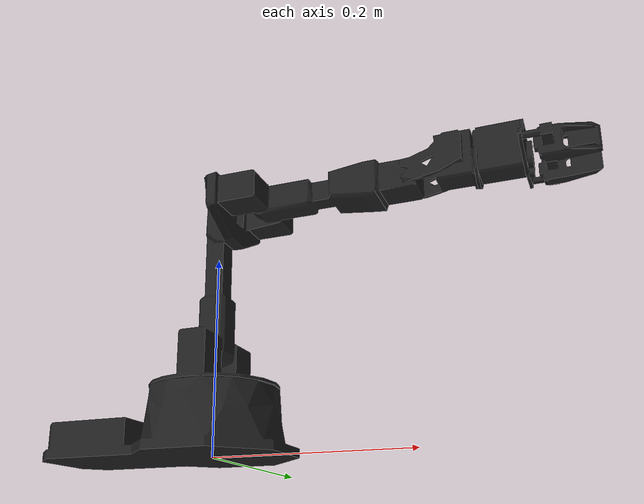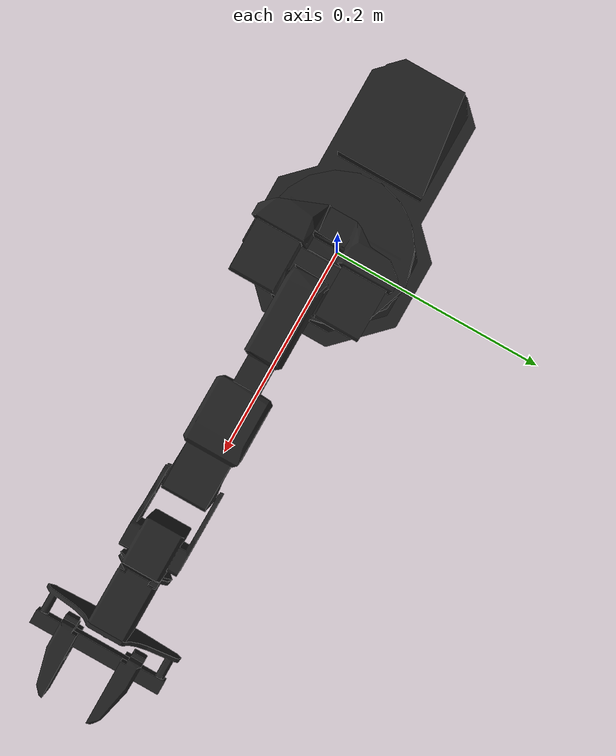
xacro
<?xml version="1.0"?>
<robot name="px150" xmlns:xacro="http://ros.org/wiki/xacro">

  <xacro:arg name="robot_name" default = "px150"/>
  <xacro:arg name="base_link_frame" default="base_link"/>
  <xacro:arg name="show_ar_tag" default="false"/>
  <xacro:arg name="show_gripper_bar" default="true"/>
  <xacro:arg name="show_gripper_fingers" default="true"/>
  <xacro:arg name="use_world_frame" default="false"/>
  <xacro:arg name="external_urdf_loc" default=""/>
  <xacro:arg name="load_gazebo_configs" default="false"/>

  <xacro:property name="urdf_loc" value="$(arg external_urdf_loc)"/>
  <xacro:property name="pi_offset" value="0.00001"/>

  <xacro:if value="$(arg load_gazebo_configs)">
    <xacro:include filename="$(find interbotix_xsarm_gazebo)/config/interbotix_texture.gazebo"/>
  </xacro:if>

  <material name="interbotix_black">
    <texture filename="package://meshes/interbotix_black.png"/>
  </material>

  <xacro:if value="$(arg use_world_frame)">
    <link name="world"/>
    <joint name="fixed" type="fixed">
      <parent link="world"/>
      <child link="$(arg robot_name)/$(arg base_link_frame)"/>
    </joint>
  </xacro:if>

  <link name="$(arg robot_name)/$(arg base_link_frame)">
    <visual>
      <origin rpy="0 0 ${-pi/2}" xyz="0 0 0"/>
      <geometry>
        <mesh filename="package://meshes/px150_meshes/px150_1_base_coll.stl" scale="0.001 0.001 0.001"/>
      </geometry>
      <material name="interbotix_black"/>
    </visual>
    <collision>
      <origin rpy="0 0 ${-pi/2}" xyz="0 0 0"/>
      <geometry>
        <mesh filename="package://meshes/px150_meshes/px150_1_base_coll.stl" scale="0.001 0.001 0.001"/>
      </geometry>
    </collision>
    <inertial>
      <origin rpy="0 0 ${pi/2}" xyz="-0.0354561000 -0.0033567000 0.0253423000"/>
      <mass value="0.766173" />
      <inertia ixx="0.0033550000" iyy="0.0013570000" izz="0.0041120000" ixy="-0.0001248000" ixz="0.0000110400" iyz="0.0002101000" />
    </inertial>
  </link>

  <joint name="waist" type="revolute">
    <axis xyz="0 0 1"/>
    <limit effort="8" lower="${-pi + pi_offset}" upper="${pi - pi_offset}" velocity="${pi}"/>
    <origin rpy="0 0 0" xyz="0 0 0.06566"/>
    <parent link="$(arg robot_name)/$(arg base_link_frame)"/>
    <child link="$(arg robot_name)/shoulder_link"/>
    <dynamics friction="0.1"/>
  </joint>

  <transmission name="trans_waist">
    <type>transmission_interface/SimpleTransmission</type>
    <joint name="waist">
      <hardwareInterface>hardware_interface/EffortJointInterface</hardwareInterface>
    </joint>
    <actuator name="waist_motor">
      <mechanicalReduction>1</mechanicalReduction>
    </actuator>
  </transmission>

  <link name="$(arg robot_name)/shoulder_link">
    <visual>
      <origin rpy="0 0 ${-pi/2}" xyz="0 0 0.0015"/>
      <geometry>
        <mesh filename="package://meshes/px150_meshes/px150_2_shoulder_coll.stl" scale="0.001 0.001 0.001"/>
      </geometry>
      <material name="interbotix_black"/>
    </visual>
    <collision>
      <origin rpy="0 0 ${-pi/2}" xyz="0 0 0.0015"/>
      <geometry>
        <mesh filename="package://meshes/px150_meshes/px150_2_shoulder_coll.stl" scale="0.001 0.001 0.001"/>
      </geometry>
    </collision>
    <inertial>
      <origin rpy="0 0 ${pi/2}" xyz="-0.0001000750 0.0000203624 0.0104104000"/>
      <mass value="0.287601" />
      <inertia ixx="0.0002390000" iyy="0.0003634000" izz="0.0004126000" ixy="0.0000000010" ixz="0.0000000348" iyz="0.0000003613" />
    </inertial>
  </link>

  <joint name="shoulder" type="revolute">
    <axis xyz="0 1 0"/>
    <limit effort="18" lower="${radians(-111)}" upper="${radians(111)}" velocity="${pi}"/>
    <origin rpy="0 0 0" xyz="0 0 0.03891"/>
    <parent link="$(arg robot_name)/shoulder_link"/>
    <child link="$(arg robot_name)/upper_arm_link"/>
    <dynamics friction="0.1"/>
  </joint>

  <transmission name="trans_shoulder">
    <type>transmission_interface/SimpleTransmission</type>
    <joint name="shoulder">
      <hardwareInterface>hardware_interface/EffortJointInterface</hardwareInterface>
    </joint>
    <actuator name="shoulder_motor">
      <mechanicalReduction>1</mechanicalReduction>
    </actuator>
  </transmission>

  <link name="$(arg robot_name)/upper_arm_link">
    <visual>
      <origin rpy="0 0 ${pi/2}" xyz="0 0 0"/>
      <geometry>
        <mesh filename="package://meshes/px150_meshes/px150_3_upper_arm_coll.stl" scale="0.001 0.001 0.001"/>
      </geometry>
      <material name="interbotix_black"/>
    </visual>
    <collision>
      <origin rpy="0 0 ${pi/2}" xyz="0 0 0"/>
      <geometry>
        <mesh filename="package://meshes/px150_meshes/px150_3_upper_arm_coll.stl" scale="0.001 0.001 0.001"/>
      </geometry>
    </collision>
    <inertial>
      <origin rpy="0 0 ${pi/2}" xyz="0.0166098000 0.0000000279 0.1157350000"/>
      <mass value="0.338081" />
      <inertia ixx="0.0010210000" iyy="0.0011320000" izz="0.0003525000" ixy="-0.0000000001" ixz="0.0000000000" iyz="0.0001839000" />
    </inertial>
  </link>

  <joint name="elbow" type="revolute">
    <axis xyz="0 1 0"/>
    <limit effort="13" lower="${radians(-120)}" upper="${radians(95)}" velocity="${pi}"/>
    <origin rpy="0 0 0" xyz="0.05 0 0.15"/>
    <parent link="$(arg robot_name)/upper_arm_link"/>
    <child link="$(arg robot_name)/forearm_link"/>
    <dynamics friction="0.1"/>
  </joint>

  <transmission name="trans_elbow">
    <type>transmission_interface/SimpleTransmission</type>
    <joint name="elbow">
      <hardwareInterface>hardware_interface/EffortJointInterface</hardwareInterface>
    </joint>
    <actuator name="elbow_motor">
      <mechanicalReduction>1</mechanicalReduction>
    </actuator>
  </transmission>

  <link name="$(arg robot_name)/forearm_link">
    <visual>
      <origin rpy="0 0 ${pi/2}" xyz="0 0 0"/>
      <geometry>
        <mesh filename="package://meshes/px150_meshes/px150_4_forearm_coll.stl" scale="0.001 0.001 0.001"/>
      </geometry>
      <material name="interbotix_black"/>
    </visual>
    <collision>
      <origin rpy="0 0 ${pi/2}" xyz="0 0 0"/>
      <geometry>
        <mesh filename="package://meshes/px150_meshes/px150_4_forearm_coll.stl" scale="0.001 0.001 0.001"/>
      </geometry>
    </collision>
    <inertial>
      <origin rpy="0 0 ${pi/2}" xyz="0.0848470000 -0.0001072261 0.0000000000"/>
      <mass value="0.226542" />
      <inertia ixx="0.0005125000" iyy="0.0000498800" izz="0.0005207000" ixy="-0.0000013403" ixz="0.0000000000" iyz="0.0000000000" />
    </inertial>
  </link>

  <joint name="wrist_angle" type="revolute">
    <axis xyz="0 1 0"/>
    <limit effort="5" lower="${radians(-100)}" upper="${radians(123)}" velocity="${pi}"/>
    <origin rpy="0 0 0" xyz="0.15 0 0"/>
    <parent link="$(arg robot_name)/forearm_link"/>
    <child link="$(arg robot_name)/wrist_link"/>
    <dynamics friction="0.1"/>
  </joint>

  <transmission name="trans_wrist_angle">
    <type>transmission_interface/SimpleTransmission</type>
    <joint name="wrist_angle">
      <hardwareInterface>hardware_interface/EffortJointInterface</hardwareInterface>
    </joint>
    <actuator name="wrist_angle_motor">
      <mechanicalReduction>1</mechanicalReduction>
    </actuator>
  </transmission>

  <link name="$(arg robot_name)/wrist_link">
    <visual>
      <origin rpy="0 0 ${pi/2}" xyz="0 0 0"/>
      <geometry>
        <mesh filename="package://meshes/px150_meshes/px150_5_wrist_coll.stl" scale="0.001 0.001 0.001"/>
      </geometry>
      <material name="interbotix_black"/>
    </visual>
    <collision>
      <origin rpy="0 0 ${pi/2}" xyz="0 0 0"/>
      <geometry>
        <mesh filename="package://meshes/px150_meshes/px150_5_wrist_coll.stl" scale="0.001 0.001 0.001"/>
      </geometry>
    </collision>
    <inertial>
      <origin rpy="0 0 ${pi/2}" xyz="0.0423600000 -0.0000104110 0.0105770000"/>
      <mass value="0.084957" />
      <inertia ixx="0.0000308200" iyy="0.0000282200" izz="0.0000315200" ixy="0.0000000191" ixz="0.0000000023" iyz="0.0000025481" />
    </inertial>
  </link>

  <joint name="wrist_rotate" type="revolute">
    <axis xyz="1 0 0"/>
    <limit effort="1" lower="${-pi + pi_offset}" upper="${pi - pi_offset}" velocity="${pi}"/>
    <origin rpy="0 0 0" xyz="0.065 0 0"/>
    <parent link="$(arg robot_name)/wrist_link"/>
    <child link="$(arg robot_name)/gripper_link"/>
    <dynamics friction="0.1"/>
  </joint>

  <transmission name="trans_wrist_rotate">
    <type>transmission_interface/SimpleTransmission</type>
    <joint name="wrist_rotate">
      <hardwareInterface>hardware_interface/EffortJointInterface</hardwareInterface>
    </joint>
    <actuator name="wrist_rotate_motor">
      <mechanicalReduction>1</mechanicalReduction>
    </actuator>
  </transmission>

  <link name="$(arg robot_name)/gripper_link">
    <visual>
      <origin rpy="0 0 ${pi/2}" xyz="-0.02 0 0"/>
      <geometry>
        <mesh filename="package://meshes/px150_meshes/px150_6_gripper_coll.stl" scale="0.001 0.001 0.001"/>
      </geometry>
      <material name="interbotix_black"/>
    </visual>
    <collision>
      <origin rpy="0 0 ${pi/2}" xyz="-0.02 0 0"/>
      <geometry>
        <mesh filename="package://meshes/px150_meshes/px150_6_gripper_coll.stl" scale="0.001 0.001 0.001"/>
      </geometry>
    </collision>
    <inertial>
      <origin rpy="0 0 ${pi/2}" xyz="0.0216300000 0.0000000000 0.0114100000"/>
      <mass value="0.072885" />
      <inertia ixx="0.0000253700" iyy="0.0000183600" izz="0.0000167400" ixy="0.0000000000" ixz="0.0000000000" iyz="0.0000004340" />
    </inertial>
  </link>

  <joint name="ee_arm" type="fixed">
    <axis xyz="1 0 0"/>
    <origin rpy="0 0 0" xyz="0.043 0 0"/>
    <parent link="$(arg robot_name)/gripper_link"/>
    <child link="$(arg robot_name)/ee_arm_link"/>
  </joint>

  <link name="$(arg robot_name)/ee_arm_link">
    <inertial>
      <mass value="0.001" />
      <inertia ixx="0.0001" iyy="0.0001" izz="0.0001" ixy="0" ixz="0" iyz="0" />
    </inertial>
  </link>

  <joint name="gripper" type="continuous">
    <axis xyz="1 0 0"/>
    <limit effort="1" velocity="${pi}"/>
    <origin rpy="0 0 0" xyz="0.0055 0 0"/>
    <parent link="$(arg robot_name)/ee_arm_link"/>
    <child link="$(arg robot_name)/gripper_prop_link"/>
    <dynamics friction="0.1"/>
  </joint>

  <transmission name="trans_gripper">
    <type>transmission_interface/SimpleTransmission</type>
    <joint name="gripper">
      <hardwareInterface>hardware_interface/EffortJointInterface</hardwareInterface>
    </joint>
    <actuator name="gripper_motor">
      <mechanicalReduction>1</mechanicalReduction>
    </actuator>
  </transmission>

  <link name="$(arg robot_name)/gripper_prop_link">
    <visual>
      <origin rpy="0 0 ${pi/2}" xyz="-0.0685 0 0"/>
      <geometry>
        <mesh filename="package://meshes/px150_meshes/px150_7_gripper_prop_coll.stl" scale="0.001 0.001 0.001"/>
      </geometry>
      <material name="interbotix_black"/>
    </visual>
    <collision>
      <origin rpy="0 0 ${pi/2}" xyz="-0.0685 0 0"/>
      <geometry>
        <mesh filename="package://meshes/px150_meshes/px150_7_gripper_prop_coll.stl" scale="0.001 0.001 0.001"/>
      </geometry>
    </collision>
    <inertial>
      <origin rpy="0 0 ${pi/2}" xyz="0.0008460000 -0.0000019330 0.0000420000"/>
      <mass value="0.00434" />
      <inertia ixx="0.0000005923" iyy="0.0000011156" izz="0.0000005743" ixy="0.0000000000" ixz="0.0000003195" iyz="-0.0000000004" />
    </inertial>
  </link>

  <!-- If the AR tag is being used, then add the AR tag mount -->

  <xacro:if value="$(arg show_ar_tag)">

    <joint name="ar_tag" type="fixed">
      <axis xyz="0 0 0"/>
      <origin rpy="0 0 0" xyz="-0.017 0 0.04155"/>
      <parent link="$(arg robot_name)/ee_arm_link"/>
      <child link="$(arg robot_name)/ar_tag_link"/>
    </joint>

    <link name="$(arg robot_name)/ar_tag_link">
      <visual>
        <origin rpy="0 0 0" xyz="0 0 0"/>
        <geometry>
          <mesh filename="package://meshes/px150_meshes/px150_10_ar_tag.stl" scale="0.001 0.001 0.001"/>
        </geometry>
        <material name="interbotix_black"/>
      </visual>
      <collision>
        <origin rpy="0 0 0" xyz="0 0 0"/>
        <geometry>
          <mesh filename="package://meshes/px150_meshes/px150_10_ar_tag.stl" scale="0.001 0.001 0.001"/>
        </geometry>
      </collision>
      <inertial>
        <origin rpy="0 0 0" xyz="0 0 -0.00315"/>
        <mass value="0.016507"/>
        <inertia ixx="0.000003084" ixy="0" ixz="0" iyy="0.000003084" iyz="0" izz="0.000006059"/>
      </inertial>
    </link>

  </xacro:if>

  <!-- If the gripper bar is being used, then also add the gripper bar -->

  <xacro:if value="$(arg show_gripper_bar)">

    <joint name="gripper_bar" type="fixed">
      <axis xyz="1 0 0"/>
      <origin rpy="0 0 0" xyz="0 0 0"/>
      <parent link="$(arg robot_name)/ee_arm_link"/>
      <child link="$(arg robot_name)/gripper_bar_link"/>
    </joint>

    <link name="$(arg robot_name)/gripper_bar_link">
      <visual>
        <origin rpy="0 0 ${pi/2}" xyz="-0.063 0 0"/>
        <geometry>
          <mesh filename="package://meshes/px150_meshes/px150_8_gripper_bar_coll.stl" scale="0.001 0.001 0.001"/>
        </geometry>
        <material name="interbotix_black"/>
      </visual>
      <collision>
        <origin rpy="0 0 ${pi/2}" xyz="-0.063 0 0"/>
        <geometry>
          <mesh filename="package://meshes/px150_meshes/px150_8_gripper_bar_coll.stl" scale="0.001 0.001 0.001"/>
        </geometry>
      </collision>
      <inertial>
        <origin rpy="0 0 ${pi/2}" xyz="0.0096870000 0.0000005660 0.0049620000"/>
        <mass value="0.034199" />
        <inertia ixx="0.0000074125" iyy="0.0000284300" izz="0.0000286000" ixy="-0.0000000008" ixz="-0.0000000006" iyz="-0.0000013889" />
      </inertial>
    </link>

    <joint name="ee_bar" type="fixed">
      <axis xyz="1 0 0"/>
      <origin rpy="0 0 0" xyz="0.023 0 0"/>
      <parent link="$(arg robot_name)/gripper_bar_link"/>
      <child link="$(arg robot_name)/fingers_link"/>
    </joint>

    <link name="$(arg robot_name)/fingers_link">
      <inertial>
        <mass value="0.001" />
        <inertia ixx="0.0001" iyy="0.0001" izz="0.0001" ixy="0" ixz="0" iyz="0" />
      </inertial>
    </link>

    <!-- If the gripper fingers are being used, add those as well -->

    <xacro:if value="$(arg show_gripper_fingers)">

      <joint name="left_finger" type="prismatic">
        <axis xyz="0 1 0"/>
        <limit effort="5" lower="0.015" upper="0.037" velocity="1"/>
        <origin rpy="0 0 0" xyz="0 0 0"/>
        <parent link="$(arg robot_name)/fingers_link"/>
        <child link="$(arg robot_name)/left_finger_link"/>
        <dynamics friction="0.1"/>
      </joint>

      <transmission name="trans_left_finger">
        <type>transmission_interface/SimpleTransmission</type>
        <joint name="left_finger">
          <hardwareInterface>hardware_interface/EffortJointInterface</hardwareInterface>
        </joint>
        <actuator name="left_finger_motor">
          <mechanicalReduction>1</mechanicalReduction>
        </actuator>
      </transmission>

      <link name="$(arg robot_name)/left_finger_link">
        <visual>
          <origin rpy="${pi} ${pi} 0" xyz="0 0.005 0"/>
          <geometry>
            <mesh filename="package://meshes/px150_meshes/px150_9_gripper_finger_coll.stl" scale="0.001 0.001 0.001"/>
          </geometry>
          <material name="interbotix_black"/>
        </visual>
        <collision>
          <origin rpy="${pi} ${pi} 0" xyz="0 0.005 0"/>
          <geometry>
            <mesh filename="package://meshes/px150_meshes/px150_9_gripper_finger_coll.stl" scale="0.001 0.001 0.001"/>
          </geometry>
        </collision>
        <inertial>
          <origin rpy="${pi} ${pi} ${pi/2}" xyz="0.0138160000 0.0000000000 0.0000000000"/>
           <mass value="0.016246" />
          <inertia ixx="0.0000047310" iyy="0.0000015506" izz="0.0000037467" ixy="-0.0000004560" ixz="0.0000000000" iyz="0.0000000000" />
        </inertial>
      </link>

      <joint name="right_finger" type="prismatic">
        <axis xyz="0 1 0"/>
        <limit effort="5" lower="-0.037" upper="-0.015" velocity="1"/>
        <origin rpy="0 0 0" xyz="0 0 0"/>
        <parent link="$(arg robot_name)/fingers_link"/>
        <child link="$(arg robot_name)/right_finger_link"/>
        <dynamics friction="0.1"/>
        <xacro:unless value="$(arg load_gazebo_configs)">
          <mimic joint="left_finger" multiplier="-1" offset="0"/>
        </xacro:unless>
      </joint>

      <transmission name="trans_right_finger">
        <type>transmission_interface/SimpleTransmission</type>
        <joint name="right_finger">
          <hardwareInterface>hardware_interface/EffortJointInterface</hardwareInterface>
        </joint>
        <actuator name="right_finger_motor">
          <mechanicalReduction>1</mechanicalReduction>
        </actuator>
      </transmission>

      <link name="$(arg robot_name)/right_finger_link">
        <visual>
          <origin rpy="0 ${pi} 0" xyz="0 -0.005 0"/>
          <geometry>
            <mesh filename="package://meshes/px150_meshes/px150_9_gripper_finger_coll.stl" scale="0.001 0.001 0.001"/>
          </geometry>
          <material name="interbotix_black"/>
        </visual>
        <collision>
          <origin rpy="0 ${pi} 0" xyz="0 -0.005 0"/>
          <geometry>
            <mesh filename="package://meshes/px150_meshes/px150_9_gripper_finger_coll.stl" scale="0.001 0.001 0.001"/>
          </geometry>
        </collision>
        <inertial>
          <origin rpy="0 ${pi} ${pi/2}" xyz="0.0138160000 0.0000000000  0.0000000000"/>
          <mass value="0.016246" />
          <inertia ixx="0.0000047310" iyy="0.0000015506" izz="0.0000037467" ixy="0.0000004560" ixz="0.0000000000" iyz="0.0000000000" />
        </inertial>
      </link>

      <joint name="ee_gripper" type="fixed">
        <axis xyz="1 0 0"/>
        <origin rpy="0 0 0" xyz="0.027575 0 0"/>
        <parent link="$(arg robot_name)/fingers_link"/>
        <child link="$(arg robot_name)/ee_gripper_link"/>
      </joint>

      <link name="$(arg robot_name)/ee_gripper_link">
        <inertial>
          <mass value="0.001" />
          <inertia ixx="0.0001" iyy="0.0001" izz="0.0001" ixy="0" ixz="0" iyz="0" />
        </inertial>
      </link>

    </xacro:if>

  </xacro:if>

  <xacro:if value="${urdf_loc != ''}">
    <xacro:include filename="${urdf_loc}"/>
  </xacro:if>

</robot>
